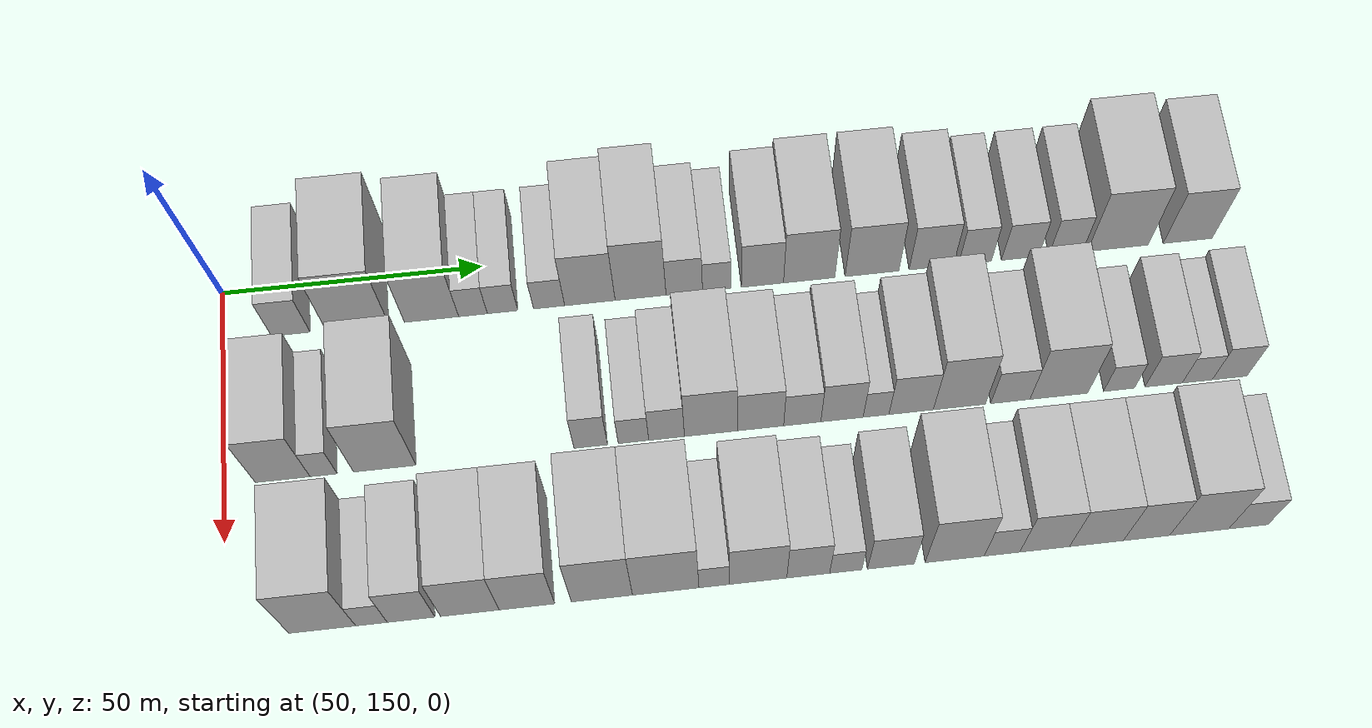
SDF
<sdf version="1.6">
 <world name="default">
  <model name="building_57">
   <static>1</static>
   <pose>50.0000 162.9138 0 0.000000 0.000000 0.000000</pose>
   <link name="link">
    <pose>0 0 7.50 0 0 0</pose>
    <collision name="collision"><geometry><box><size>20.0000 7.3179 15.0000</size></box></geometry></collision>
    <visual name="visual">
     <cast_shadows>0</cast_shadows>
     <geometry><box><size>20.0000 7.3179 15.0000</size></box></geometry>
     <material>
      <script>
       <uri>model://HANNAS_wall/materials/scripts</uri>
       <uri>model://HANNAS_wall/materials/textures</uri>
       <name>vrc/HANNAS_wall</name>
      </script>
     </material>
    </visual>
   </link>
  </model>
  <model name="building_58">
   <static>1</static>
   <pose>50.0000 175.5342 0 0.000000 0.000000 0.000000</pose>
   <link name="link">
    <pose>0 0 12.00 0 0 0</pose>
    <collision name="collision"><geometry><box><size>20.0000 11.9230 24.0000</size></box></geometry></collision>
    <visual name="visual">
     <cast_shadows>0</cast_shadows>
     <geometry><box><size>20.0000 11.9230 24.0000</size></box></geometry>
     <material>
      <script>
       <uri>model://HANNAS_wall/materials/scripts</uri>
       <uri>model://HANNAS_wall/materials/textures</uri>
       <name>vrc/HANNAS_wall</name>
      </script>
     </material>
    </visual>
   </link>
  </model>
  <model name="building_59">
   <static>1</static>
   <pose>50.0000 189.6676 0 0.000000 0.000000 0.000000</pose>
   <link name="link">
    <pose>0 0 10.50 0 0 0</pose>
    <collision name="collision"><geometry><box><size>20.0000 10.3438 21.0000</size></box></geometry></collision>
    <visual name="visual">
     <cast_shadows>0</cast_shadows>
     <geometry><box><size>20.0000 10.3438 21.0000</size></box></geometry>
     <material>
      <script>
       <uri>model://HANNAS_wall/materials/scripts</uri>
       <uri>model://HANNAS_wall/materials/textures</uri>
       <name>vrc/HANNAS_wall</name>
      </script>
     </material>
    </visual>
   </link>
  </model>
  <model name="building_60">
   <static>1</static>
   <pose>50.0000 197.5834 0 0.000000 0.000000 0.000000</pose>
   <link name="link">
    <pose>0 0 6.00 0 0 0</pose>
    <collision name="collision"><geometry><box><size>20.0000 5.4879 12.0000</size></box></geometry></collision>
    <visual name="visual">
     <cast_shadows>0</cast_shadows>
     <geometry><box><size>20.0000 5.4879 12.0000</size></box></geometry>
     <material>
      <script>
       <uri>model://HANNAS_wall/materials/scripts</uri>
       <uri>model://HANNAS_wall/materials/textures</uri>
       <name>vrc/HANNAS_wall</name>
      </script>
     </material>
    </visual>
   </link>
  </model>
  <model name="building_61">
   <static>1</static>
   <pose>50.0000 203.2409 0 0.000000 0.000000 0.000000</pose>
   <link name="link">
    <pose>0 0 6.00 0 0 0</pose>
    <collision name="collision"><geometry><box><size>20.0000 5.8271 12.0000</size></box></geometry></collision>
    <visual name="visual">
     <cast_shadows>0</cast_shadows>
     <geometry><box><size>20.0000 5.8271 12.0000</size></box></geometry>
     <material>
      <script>
       <uri>model://HANNAS_wall/materials/scripts</uri>
       <uri>model://HANNAS_wall/materials/textures</uri>
       <name>vrc/HANNAS_wall</name>
      </script>
     </material>
    </visual>
   </link>
  </model>
  <model name="building_62">
   <static>1</static>
   <pose>50.0000 212.1475 0 0.000000 0.000000 0.000000</pose>
   <link name="link">
    <pose>0 0 6.00 0 0 0</pose>
    <collision name="collision"><geometry><box><size>20.0000 5.9862 12.0000</size></box></geometry></collision>
    <visual name="visual">
     <cast_shadows>0</cast_shadows>
     <geometry><box><size>20.0000 5.9862 12.0000</size></box></geometry>
     <material>
      <script>
       <uri>model://HANNAS_wall/materials/scripts</uri>
       <uri>model://HANNAS_wall/materials/textures</uri>
       <name>vrc/HANNAS_wall</name>
      </script>
     </material>
    </visual>
   </link>
  </model>
  <model name="building_63">
   <static>1</static>
   <pose>50.0000 219.9876 0 0.000000 0.000000 0.000000</pose>
   <link name="link">
    <pose>0 0 10.50 0 0 0</pose>
    <collision name="collision"><geometry><box><size>20.0000 9.6940 21.0000</size></box></geometry></collision>
    <visual name="visual">
     <cast_shadows>0</cast_shadows>
     <geometry><box><size>20.0000 9.6940 21.0000</size></box></geometry>
     <material>
      <script>
       <uri>model://HANNAS_wall/materials/scripts</uri>
       <uri>model://HANNAS_wall/materials/textures</uri>
       <name>vrc/HANNAS_wall</name>
      </script>
     </material>
    </visual>
   </link>
  </model>
  <model name="building_64">
   <static>1</static>
   <pose>50.0000 229.7337 0 0.000000 0.000000 0.000000</pose>
   <link name="link">
    <pose>0 0 12.00 0 0 0</pose>
    <collision name="collision"><geometry><box><size>20.0000 9.7983 24.0000</size></box></geometry></collision>
    <visual name="visual">
     <cast_shadows>0</cast_shadows>
     <geometry><box><size>20.0000 9.7983 24.0000</size></box></geometry>
     <material>
      <script>
       <uri>model://HANNAS_wall/materials/scripts</uri>
       <uri>model://HANNAS_wall/materials/textures</uri>
       <name>vrc/HANNAS_wall</name>
      </script>
     </material>
    </visual>
   </link>
  </model>
  <model name="building_65">
   <static>1</static>
   <pose>50.0000 238.1530 0 0.000000 0.000000 0.000000</pose>
   <link name="link">
    <pose>0 0 7.50 0 0 0</pose>
    <collision name="collision"><geometry><box><size>20.0000 7.0405 15.0000</size></box></geometry></collision>
    <visual name="visual">
     <cast_shadows>0</cast_shadows>
     <geometry><box><size>20.0000 7.0405 15.0000</size></box></geometry>
     <material>
      <script>
       <uri>model://HANNAS_wall/materials/scripts</uri>
       <uri>model://HANNAS_wall/materials/textures</uri>
       <name>vrc/HANNAS_wall</name>
      </script>
     </material>
    </visual>
   </link>
  </model>
  <model name="building_66">
   <static>1</static>
   <pose>50.0000 244.4264 0 0.000000 0.000000 0.000000</pose>
   <link name="link">
    <pose>0 0 6.00 0 0 0</pose>
    <collision name="collision"><geometry><box><size>20.0000 5.5063 12.0000</size></box></geometry></collision>
    <visual name="visual">
     <cast_shadows>0</cast_shadows>
     <geometry><box><size>20.0000 5.5063 12.0000</size></box></geometry>
     <material>
      <script>
       <uri>model://HANNAS_wall/materials/scripts</uri>
       <uri>model://HANNAS_wall/materials/textures</uri>
       <name>vrc/HANNAS_wall</name>
      </script>
     </material>
    </visual>
   </link>
  </model>
  <model name="building_67">
   <static>1</static>
   <pose>50.0000 253.2638 0 0.000000 0.000000 0.000000</pose>
   <link name="link">
    <pose>0 0 9.00 0 0 0</pose>
    <collision name="collision"><geometry><box><size>20.0000 8.1686 18.0000</size></box></geometry></collision>
    <visual name="visual">
     <cast_shadows>0</cast_shadows>
     <geometry><box><size>20.0000 8.1686 18.0000</size></box></geometry>
     <material>
      <script>
       <uri>model://HANNAS_wall/materials/scripts</uri>
       <uri>model://HANNAS_wall/materials/textures</uri>
       <name>vrc/HANNAS_wall</name>
      </script>
     </material>
    </visual>
   </link>
  </model>
  <model name="building_68">
   <static>1</static>
   <pose>50.0000 262.3257 0 0.000000 0.000000 0.000000</pose>
   <link name="link">
    <pose>0 0 10.50 0 0 0</pose>
    <collision name="collision"><geometry><box><size>20.0000 9.9552 21.0000</size></box></geometry></collision>
    <visual name="visual">
     <cast_shadows>0</cast_shadows>
     <geometry><box><size>20.0000 9.9552 21.0000</size></box></geometry>
     <material>
      <script>
       <uri>model://HANNAS_wall/materials/scripts</uri>
       <uri>model://HANNAS_wall/materials/textures</uri>
       <name>vrc/HANNAS_wall</name>
      </script>
     </material>
    </visual>
   </link>
  </model>
  <model name="building_69">
   <static>1</static>
   <pose>50.0000 274.5412 0 0.000000 0.000000 0.000000</pose>
   <link name="link">
    <pose>0 0 10.50 0 0 0</pose>
    <collision name="collision"><geometry><box><size>20.0000 10.4757 21.0000</size></box></geometry></collision>
    <visual name="visual">
     <cast_shadows>0</cast_shadows>
     <geometry><box><size>20.0000 10.4757 21.0000</size></box></geometry>
     <material>
      <script>
       <uri>model://HANNAS_wall/materials/scripts</uri>
       <uri>model://HANNAS_wall/materials/textures</uri>
       <name>vrc/HANNAS_wall</name>
      </script>
     </material>
    </visual>
   </link>
  </model>
  <model name="building_70">
   <static>1</static>
   <pose>50.0000 286.1016 0 0.000000 0.000000 0.000000</pose>
   <link name="link">
    <pose>0 0 9.00 0 0 0</pose>
    <collision name="collision"><geometry><box><size>20.0000 8.6452 18.0000</size></box></geometry></collision>
    <visual name="visual">
     <cast_shadows>0</cast_shadows>
     <geometry><box><size>20.0000 8.6452 18.0000</size></box></geometry>
     <material>
      <script>
       <uri>model://HANNAS_wall/materials/scripts</uri>
       <uri>model://HANNAS_wall/materials/textures</uri>
       <name>vrc/HANNAS_wall</name>
      </script>
     </material>
    </visual>
   </link>
  </model>
  <model name="building_71">
   <static>1</static>
   <pose>50.0000 294.6359 0 0.000000 0.000000 0.000000</pose>
   <link name="link">
    <pose>0 0 7.50 0 0 0</pose>
    <collision name="collision"><geometry><box><size>20.0000 6.4233 15.0000</size></box></geometry></collision>
    <visual name="visual">
     <cast_shadows>0</cast_shadows>
     <geometry><box><size>20.0000 6.4233 15.0000</size></box></geometry>
     <material>
      <script>
       <uri>model://HANNAS_wall/materials/scripts</uri>
       <uri>model://HANNAS_wall/materials/textures</uri>
       <name>vrc/HANNAS_wall</name>
      </script>
     </material>
    </visual>
   </link>
  </model>
  <model name="building_72">
   <static>1</static>
   <pose>50.0000 303.4759 0 0.000000 0.000000 0.000000</pose>
   <link name="link">
    <pose>0 0 7.50 0 0 0</pose>
    <collision name="collision"><geometry><box><size>20.0000 7.2566 15.0000</size></box></geometry></collision>
    <visual name="visual">
     <cast_shadows>0</cast_shadows>
     <geometry><box><size>20.0000 7.2566 15.0000</size></box></geometry>
     <material>
      <script>
       <uri>model://HANNAS_wall/materials/scripts</uri>
       <uri>model://HANNAS_wall/materials/textures</uri>
       <name>vrc/HANNAS_wall</name>
      </script>
     </material>
    </visual>
   </link>
  </model>
  <model name="building_73">
   <static>1</static>
   <pose>50.0000 312.4105 0 0.000000 0.000000 0.000000</pose>
   <link name="link">
    <pose>0 0 7.50 0 0 0</pose>
    <collision name="collision"><geometry><box><size>20.0000 6.6127 15.0000</size></box></geometry></collision>
    <visual name="visual">
     <cast_shadows>0</cast_shadows>
     <geometry><box><size>20.0000 6.6127 15.0000</size></box></geometry>
     <material>
      <script>
       <uri>model://HANNAS_wall/materials/scripts</uri>
       <uri>model://HANNAS_wall/materials/textures</uri>
       <name>vrc/HANNAS_wall</name>
      </script>
     </material>
    </visual>
   </link>
  </model>
  <model name="building_74">
   <static>1</static>
   <pose>50.0000 322.6926 0 0.000000 0.000000 0.000000</pose>
   <link name="link">
    <pose>0 0 12.00 0 0 0</pose>
    <collision name="collision"><geometry><box><size>20.0000 11.9515 24.0000</size></box></geometry></collision>
    <visual name="visual">
     <cast_shadows>0</cast_shadows>
     <geometry><box><size>20.0000 11.9515 24.0000</size></box></geometry>
     <material>
      <script>
       <uri>model://HANNAS_wall/materials/scripts</uri>
       <uri>model://HANNAS_wall/materials/textures</uri>
       <name>vrc/HANNAS_wall</name>
      </script>
     </material>
    </visual>
   </link>
  </model>
  <model name="building_75">
   <static>1</static>
   <pose>50.0000 336.5214 0 0.000000 0.000000 0.000000</pose>
   <link name="link">
    <pose>0 0 10.50 0 0 0</pose>
    <collision name="collision"><geometry><box><size>20.0000 9.7062 21.0000</size></box></geometry></collision>
    <visual name="visual">
     <cast_shadows>0</cast_shadows>
     <geometry><box><size>20.0000 9.7062 21.0000</size></box></geometry>
     <material>
      <script>
       <uri>model://HANNAS_wall/materials/scripts</uri>
       <uri>model://HANNAS_wall/materials/textures</uri>
       <name>vrc/HANNAS_wall</name>
      </script>
     </material>
    </visual>
   </link>
  </model>
  <model name="building_131">
   <static>1</static>
   <pose>79.0000 160.7873 0 0.000000 0.000000 0.000000</pose>
   <link name="link">
    <pose>0 0 10.50 0 0 0</pose>
    <collision name="collision"><geometry><box><size>20.0000 10.0291 21.0000</size></box></geometry></collision>
    <visual name="visual">
     <cast_shadows>0</cast_shadows>
     <geometry><box><size>20.0000 10.0291 21.0000</size></box></geometry>
     <material>
      <script>
       <uri>model://HANNAS_wall/materials/scripts</uri>
       <uri>model://HANNAS_wall/materials/textures</uri>
       <name>vrc/HANNAS_wall</name>
      </script>
     </material>
    </visual>
   </link>
  </model>
  <model name="building_132">
   <static>1</static>
   <pose>79.0000 168.2964 0 0.000000 0.000000 0.000000</pose>
   <link name="link">
    <pose>0 0 6.00 0 0 0</pose>
    <collision name="collision"><geometry><box><size>20.0000 4.9891 12.0000</size></box></geometry></collision>
    <visual name="visual">
     <cast_shadows>0</cast_shadows>
     <geometry><box><size>20.0000 4.9891 12.0000</size></box></geometry>
     <material>
      <script>
       <uri>model://HANNAS_wall/materials/scripts</uri>
       <uri>model://HANNAS_wall/materials/textures</uri>
       <name>vrc/HANNAS_wall</name>
      </script>
     </material>
    </visual>
   </link>
  </model>
  <model name="building_133">
   <static>1</static>
   <pose>79.0000 179.5604 0 0.000000 0.000000 0.000000</pose>
   <link name="link">
    <pose>0 0 12.00 0 0 0</pose>
    <collision name="collision"><geometry><box><size>20.0000 11.5391 24.0000</size></box></geometry></collision>
    <visual name="visual">
     <cast_shadows>0</cast_shadows>
     <geometry><box><size>20.0000 11.5391 24.0000</size></box></geometry>
     <material>
      <script>
       <uri>model://HANNAS_wall/materials/scripts</uri>
       <uri>model://HANNAS_wall/materials/textures</uri>
       <name>vrc/HANNAS_wall</name>
      </script>
     </material>
    </visual>
   </link>
  </model>
  <model name="building_134">
   <static>1</static>
   <pose>79.0000 217.6968 0 0.000000 0.000000 0.000000</pose>
   <link name="link">
    <pose>0 0 7.50 0 0 0</pose>
    <collision name="collision"><geometry><box><size>20.0000 6.2445 15.0000</size></box></geometry></collision>
    <visual name="visual">
     <cast_shadows>0</cast_shadows>
     <geometry><box><size>20.0000 6.2445 15.0000</size></box></geometry>
     <material>
      <script>
       <uri>model://HANNAS_wall/materials/scripts</uri>
       <uri>model://HANNAS_wall/materials/textures</uri>
       <name>vrc/HANNAS_wall</name>
      </script>
     </material>
    </visual>
   </link>
  </model>
  <model name="building_135">
   <static>1</static>
   <pose>79.0000 225.6678 0 0.000000 0.000000 0.000000</pose>
   <link name="link">
    <pose>0 0 6.00 0 0 0</pose>
    <collision name="collision"><geometry><box><size>20.0000 5.6975 12.0000</size></box></geometry></collision>
    <visual name="visual">
     <cast_shadows>0</cast_shadows>
     <geometry><box><size>20.0000 5.6975 12.0000</size></box></geometry>
     <material>
      <script>
       <uri>model://HANNAS_wall/materials/scripts</uri>
       <uri>model://HANNAS_wall/materials/textures</uri>
       <name>vrc/HANNAS_wall</name>
      </script>
     </material>
    </visual>
   </link>
  </model>
  <model name="building_136">
   <static>1</static>
   <pose>79.0000 231.8437 0 0.000000 0.000000 0.000000</pose>
   <link name="link">
    <pose>0 0 7.50 0 0 0</pose>
    <collision name="collision"><geometry><box><size>20.0000 6.6543 15.0000</size></box></geometry></collision>
    <visual name="visual">
     <cast_shadows>0</cast_shadows>
     <geometry><box><size>20.0000 6.6543 15.0000</size></box></geometry>
     <material>
      <script>
       <uri>model://HANNAS_wall/materials/scripts</uri>
       <uri>model://HANNAS_wall/materials/textures</uri>
       <name>vrc/HANNAS_wall</name>
      </script>
     </material>
    </visual>
   </link>
  </model>
  <model name="building_137">
   <static>1</static>
   <pose>79.0000 240.1162 0 0.000000 0.000000 0.000000</pose>
   <link name="link">
    <pose>0 0 10.50 0 0 0</pose>
    <collision name="collision"><geometry><box><size>20.0000 9.8907 21.0000</size></box></geometry></collision>
    <visual name="visual">
     <cast_shadows>0</cast_shadows>
     <geometry><box><size>20.0000 9.8907 21.0000</size></box></geometry>
     <material>
      <script>
       <uri>model://HANNAS_wall/materials/scripts</uri>
       <uri>model://HANNAS_wall/materials/textures</uri>
       <name>vrc/HANNAS_wall</name>
      </script>
     </material>
    </visual>
   </link>
  </model>
  <model name="building_138">
   <static>1</static>
   <pose>79.0000 249.4116 0 0.000000 0.000000 0.000000</pose>
   <link name="link">
    <pose>0 0 9.00 0 0 0</pose>
    <collision name="collision"><geometry><box><size>20.0000 8.7002 18.0000</size></box></geometry></collision>
    <visual name="visual">
     <cast_shadows>0</cast_shadows>
     <geometry><box><size>20.0000 8.7002 18.0000</size></box></geometry>
     <material>
      <script>
       <uri>model://HANNAS_wall/materials/scripts</uri>
       <uri>model://HANNAS_wall/materials/textures</uri>
       <name>vrc/HANNAS_wall</name>
      </script>
     </material>
    </visual>
   </link>
  </model>
  <model name="building_139">
   <static>1</static>
   <pose>79.0000 257.2478 0 0.000000 0.000000 0.000000</pose>
   <link name="link">
    <pose>0 0 7.50 0 0 0</pose>
    <collision name="collision"><geometry><box><size>20.0000 6.9723 15.0000</size></box></geometry></collision>
    <visual name="visual">
     <cast_shadows>0</cast_shadows>
     <geometry><box><size>20.0000 6.9723 15.0000</size></box></geometry>
     <material>
      <script>
       <uri>model://HANNAS_wall/materials/scripts</uri>
       <uri>model://HANNAS_wall/materials/textures</uri>
       <name>vrc/HANNAS_wall</name>
      </script>
     </material>
    </visual>
   </link>
  </model>
  <model name="building_140">
   <static>1</static>
   <pose>79.0000 264.7198 0 0.000000 0.000000 0.000000</pose>
   <link name="link">
    <pose>0 0 9.00 0 0 0</pose>
    <collision name="collision"><geometry><box><size>20.0000 7.9718 18.0000</size></box></geometry></collision>
    <visual name="visual">
     <cast_shadows>0</cast_shadows>
     <geometry><box><size>20.0000 7.9718 18.0000</size></box></geometry>
     <material>
      <script>
       <uri>model://HANNAS_wall/materials/scripts</uri>
       <uri>model://HANNAS_wall/materials/textures</uri>
       <name>vrc/HANNAS_wall</name>
      </script>
     </material>
    </visual>
   </link>
  </model>
  <model name="building_141">
   <static>1</static>
   <pose>79.0000 271.1408 0 0.000000 0.000000 0.000000</pose>
   <link name="link">
    <pose>0 0 6.00 0 0 0</pose>
    <collision name="collision"><geometry><box><size>20.0000 4.8702 12.0000</size></box></geometry></collision>
    <visual name="visual">
     <cast_shadows>0</cast_shadows>
     <geometry><box><size>20.0000 4.8702 12.0000</size></box></geometry>
     <material>
      <script>
       <uri>model://HANNAS_wall/materials/scripts</uri>
       <uri>model://HANNAS_wall/materials/textures</uri>
       <name>vrc/HANNAS_wall</name>
      </script>
     </material>
    </visual>
   </link>
  </model>
  <model name="building_142">
   <static>1</static>
   <pose>79.0000 277.7750 0 0.000000 0.000000 0.000000</pose>
   <link name="link">
    <pose>0 0 9.00 0 0 0</pose>
    <collision name="collision"><geometry><box><size>20.0000 8.3982 18.0000</size></box></geometry></collision>
    <visual name="visual">
     <cast_shadows>0</cast_shadows>
     <geometry><box><size>20.0000 8.3982 18.0000</size></box></geometry>
     <material>
      <script>
       <uri>model://HANNAS_wall/materials/scripts</uri>
       <uri>model://HANNAS_wall/materials/textures</uri>
       <name>vrc/HANNAS_wall</name>
      </script>
     </material>
    </visual>
   </link>
  </model>
  <model name="building_143">
   <static>1</static>
   <pose>79.0000 286.9062 0 0.000000 0.000000 0.000000</pose>
   <link name="link">
    <pose>0 0 12.00 0 0 0</pose>
    <collision name="collision"><geometry><box><size>20.0000 9.8642 24.0000</size></box></geometry></collision>
    <visual name="visual">
     <cast_shadows>0</cast_shadows>
     <geometry><box><size>20.0000 9.8642 24.0000</size></box></geometry>
     <material>
      <script>
       <uri>model://HANNAS_wall/materials/scripts</uri>
       <uri>model://HANNAS_wall/materials/textures</uri>
       <name>vrc/HANNAS_wall</name>
      </script>
     </material>
    </visual>
   </link>
  </model>
  <model name="building_144">
   <static>1</static>
   <pose>79.0000 296.5648 0 0.000000 0.000000 0.000000</pose>
   <link name="link">
    <pose>0 0 7.50 0 0 0</pose>
    <collision name="collision"><geometry><box><size>20.0000 7.4529 15.0000</size></box></geometry></collision>
    <visual name="visual">
     <cast_shadows>0</cast_shadows>
     <geometry><box><size>20.0000 7.4529 15.0000</size></box></geometry>
     <material>
      <script>
       <uri>model://HANNAS_wall/materials/scripts</uri>
       <uri>model://HANNAS_wall/materials/textures</uri>
       <name>vrc/HANNAS_wall</name>
      </script>
     </material>
    </visual>
   </link>
  </model>
  <model name="building_145">
   <static>1</static>
   <pose>79.0000 305.8004 0 0.000000 0.000000 0.000000</pose>
   <link name="link">
    <pose>0 0 12.00 0 0 0</pose>
    <collision name="collision"><geometry><box><size>20.0000 11.0182 24.0000</size></box></geometry></collision>
    <visual name="visual">
     <cast_shadows>0</cast_shadows>
     <geometry><box><size>20.0000 11.0182 24.0000</size></box></geometry>
     <material>
      <script>
       <uri>model://HANNAS_wall/materials/scripts</uri>
       <uri>model://HANNAS_wall/materials/textures</uri>
       <name>vrc/HANNAS_wall</name>
      </script>
     </material>
    </visual>
   </link>
  </model>
  <model name="building_146">
   <static>1</static>
   <pose>79.0000 317.2620 0 0.000000 0.000000 0.000000</pose>
   <link name="link">
    <pose>0 0 6.00 0 0 0</pose>
    <collision name="collision"><geometry><box><size>20.0000 5.9052 12.0000</size></box></geometry></collision>
    <visual name="visual">
     <cast_shadows>0</cast_shadows>
     <geometry><box><size>20.0000 5.9052 12.0000</size></box></geometry>
     <material>
      <script>
       <uri>model://HANNAS_wall/materials/scripts</uri>
       <uri>model://HANNAS_wall/materials/textures</uri>
       <name>vrc/HANNAS_wall</name>
      </script>
     </material>
    </visual>
   </link>
  </model>
  <model name="building_147">
   <static>1</static>
   <pose>79.0000 325.7873 0 0.000000 0.000000 0.000000</pose>
   <link name="link">
    <pose>0 0 7.50 0 0 0</pose>
    <collision name="collision"><geometry><box><size>20.0000 7.1453 15.0000</size></box></geometry></collision>
    <visual name="visual">
     <cast_shadows>0</cast_shadows>
     <geometry><box><size>20.0000 7.1453 15.0000</size></box></geometry>
     <material>
      <script>
       <uri>model://HANNAS_wall/materials/scripts</uri>
       <uri>model://HANNAS_wall/materials/textures</uri>
       <name>vrc/HANNAS_wall</name>
      </script>
     </material>
    </visual>
   </link>
  </model>
  <model name="building_148">
   <static>1</static>
   <pose>79.0000 332.2399 0 0.000000 0.000000 0.000000</pose>
   <link name="link">
    <pose>0 0 6.00 0 0 0</pose>
    <collision name="collision"><geometry><box><size>20.0000 5.7599 12.0000</size></box></geometry></collision>
    <visual name="visual">
     <cast_shadows>0</cast_shadows>
     <geometry><box><size>20.0000 5.7599 12.0000</size></box></geometry>
     <material>
      <script>
       <uri>model://HANNAS_wall/materials/scripts</uri>
       <uri>model://HANNAS_wall/materials/textures</uri>
       <name>vrc/HANNAS_wall</name>
      </script>
     </material>
    </visual>
   </link>
  </model>
  <model name="building_149">
   <static>1</static>
   <pose>79.0000 338.4468 0 0.000000 0.000000 0.000000</pose>
   <link name="link">
    <pose>0 0 7.50 0 0 0</pose>
    <collision name="collision"><geometry><box><size>20.0000 6.6540 15.0000</size></box></geometry></collision>
    <visual name="visual">
     <cast_shadows>0</cast_shadows>
     <geometry><box><size>20.0000 6.6540 15.0000</size></box></geometry>
     <material>
      <script>
       <uri>model://HANNAS_wall/materials/scripts</uri>
       <uri>model://HANNAS_wall/materials/textures</uri>
       <name>vrc/HANNAS_wall</name>
      </script>
     </material>
    </visual>
   </link>
  </model>
  <model name="building_209">
   <static>1</static>
   <pose>108.0000 167.2366 0 0.000000 0.000000 0.000000</pose>
   <link name="link">
    <pose>0 0 12.00 0 0 0</pose>
    <collision name="collision"><geometry><box><size>20.0000 11.8540 24.0000</size></box></geometry></collision>
    <visual name="visual">
     <cast_shadows>0</cast_shadows>
     <geometry><box><size>20.0000 11.8540 24.0000</size></box></geometry>
     <material>
      <script>
       <uri>model://HANNAS_wall/materials/scripts</uri>
       <uri>model://HANNAS_wall/materials/textures</uri>
       <name>vrc/HANNAS_wall</name>
      </script>
     </material>
    </visual>
   </link>
  </model>
  <model name="building_210">
   <static>1</static>
   <pose>108.0000 175.9806 0 0.000000 0.000000 0.000000</pose>
   <link name="link">
    <pose>0 0 6.00 0 0 0</pose>
    <collision name="collision"><geometry><box><size>20.0000 5.6340 12.0000</size></box></geometry></collision>
    <visual name="visual">
     <cast_shadows>0</cast_shadows>
     <geometry><box><size>20.0000 5.6340 12.0000</size></box></geometry>
     <material>
      <script>
       <uri>model://HANNAS_wall/materials/scripts</uri>
       <uri>model://HANNAS_wall/materials/textures</uri>
       <name>vrc/HANNAS_wall</name>
      </script>
     </material>
    </visual>
   </link>
  </model>
  <model name="building_211">
   <static>1</static>
   <pose>108.0000 183.0486 0 0.000000 0.000000 0.000000</pose>
   <link name="link">
    <pose>0 0 9.00 0 0 0</pose>
    <collision name="collision"><geometry><box><size>20.0000 8.5020 18.0000</size></box></geometry></collision>
    <visual name="visual">
     <cast_shadows>0</cast_shadows>
     <geometry><box><size>20.0000 8.5020 18.0000</size></box></geometry>
     <material>
      <script>
       <uri>model://HANNAS_wall/materials/scripts</uri>
       <uri>model://HANNAS_wall/materials/textures</uri>
       <name>vrc/HANNAS_wall</name>
      </script>
     </material>
    </visual>
   </link>
  </model>
  <model name="building_212">
   <static>1</static>
   <pose>108.0000 193.5371 0 0.000000 0.000000 0.000000</pose>
   <link name="link">
    <pose>0 0 10.50 0 0 0</pose>
    <collision name="collision"><geometry><box><size>20.0000 10.4749 21.0000</size></box></geometry></collision>
    <visual name="visual">
     <cast_shadows>0</cast_shadows>
     <geometry><box><size>20.0000 10.4749 21.0000</size></box></geometry>
     <material>
      <script>
       <uri>model://HANNAS_wall/materials/scripts</uri>
       <uri>model://HANNAS_wall/materials/textures</uri>
       <name>vrc/HANNAS_wall</name>
      </script>
     </material>
    </visual>
   </link>
  </model>
  <model name="building_213">
   <static>1</static>
   <pose>108.0000 203.7738 0 0.000000 0.000000 0.000000</pose>
   <link name="link">
    <pose>0 0 10.50 0 0 0</pose>
    <collision name="collision"><geometry><box><size>20.0000 9.9985 21.0000</size></box></geometry></collision>
    <visual name="visual">
     <cast_shadows>0</cast_shadows>
     <geometry><box><size>20.0000 9.9985 21.0000</size></box></geometry>
     <material>
      <script>
       <uri>model://HANNAS_wall/materials/scripts</uri>
       <uri>model://HANNAS_wall/materials/textures</uri>
       <name>vrc/HANNAS_wall</name>
      </script>
     </material>
    </visual>
   </link>
  </model>
  <model name="building_214">
   <static>1</static>
   <pose>108.0000 217.2816 0 0.000000 0.000000 0.000000</pose>
   <link name="link">
    <pose>0 0 12.00 0 0 0</pose>
    <collision name="collision"><geometry><box><size>20.0000 11.0171 24.0000</size></box></geometry></collision>
    <visual name="visual">
     <cast_shadows>0</cast_shadows>
     <geometry><box><size>20.0000 11.0171 24.0000</size></box></geometry>
     <material>
      <script>
       <uri>model://HANNAS_wall/materials/scripts</uri>
       <uri>model://HANNAS_wall/materials/textures</uri>
       <name>vrc/HANNAS_wall</name>
      </script>
     </material>
    </visual>
   </link>
  </model>
  <model name="building_215">
   <static>1</static>
   <pose>108.0000 228.7811 0 0.000000 0.000000 0.000000</pose>
   <link name="link">
    <pose>0 0 12.00 0 0 0</pose>
    <collision name="collision"><geometry><box><size>20.0000 11.9819 24.0000</size></box></geometry></collision>
    <visual name="visual">
     <cast_shadows>0</cast_shadows>
     <geometry><box><size>20.0000 11.9819 24.0000</size></box></geometry>
     <material>
      <script>
       <uri>model://HANNAS_wall/materials/scripts</uri>
       <uri>model://HANNAS_wall/materials/textures</uri>
       <name>vrc/HANNAS_wall</name>
      </script>
     </material>
    </visual>
   </link>
  </model>
  <model name="building_216">
   <static>1</static>
   <pose>108.0000 237.5483 0 0.000000 0.000000 0.000000</pose>
   <link name="link">
    <pose>0 0 6.00 0 0 0</pose>
    <collision name="collision"><geometry><box><size>20.0000 5.5526 12.0000</size></box></geometry></collision>
    <visual name="visual">
     <cast_shadows>0</cast_shadows>
     <geometry><box><size>20.0000 5.5526 12.0000</size></box></geometry>
     <material>
      <script>
       <uri>model://HANNAS_wall/materials/scripts</uri>
       <uri>model://HANNAS_wall/materials/textures</uri>
       <name>vrc/HANNAS_wall</name>
      </script>
     </material>
    </visual>
   </link>
  </model>
  <model name="building_217">
   <static>1</static>
   <pose>108.0000 245.5159 0 0.000000 0.000000 0.000000</pose>
   <link name="link">
    <pose>0 0 10.50 0 0 0</pose>
    <collision name="collision"><geometry><box><size>20.0000 10.3825 21.0000</size></box></geometry></collision>
    <visual name="visual">
     <cast_shadows>0</cast_shadows>
     <geometry><box><size>20.0000 10.3825 21.0000</size></box></geometry>
     <material>
      <script>
       <uri>model://HANNAS_wall/materials/scripts</uri>
       <uri>model://HANNAS_wall/materials/textures</uri>
       <name>vrc/HANNAS_wall</name>
      </script>
     </material>
    </visual>
   </link>
  </model>
  <model name="building_218">
   <static>1</static>
   <pose>108.0000 254.6037 0 0.000000 0.000000 0.000000</pose>
   <link name="link">
    <pose>0 0 9.00 0 0 0</pose>
    <collision name="collision"><geometry><box><size>20.0000 7.7933 18.0000</size></box></geometry></collision>
    <visual name="visual">
     <cast_shadows>0</cast_shadows>
     <geometry><box><size>20.0000 7.7933 18.0000</size></box></geometry>
     <material>
      <script>
       <uri>model://HANNAS_wall/materials/scripts</uri>
       <uri>model://HANNAS_wall/materials/textures</uri>
       <name>vrc/HANNAS_wall</name>
      </script>
     </material>
    </visual>
   </link>
  </model>
  <model name="building_219">
   <static>1</static>
   <pose>108.0000 261.4410 0 0.000000 0.000000 0.000000</pose>
   <link name="link">
    <pose>0 0 6.00 0 0 0</pose>
    <collision name="collision"><geometry><box><size>20.0000 5.8813 12.0000</size></box></geometry></collision>
    <visual name="visual">
     <cast_shadows>0</cast_shadows>
     <geometry><box><size>20.0000 5.8813 12.0000</size></box></geometry>
     <material>
      <script>
       <uri>model://HANNAS_wall/materials/scripts</uri>
       <uri>model://HANNAS_wall/materials/textures</uri>
       <name>vrc/HANNAS_wall</name>
      </script>
     </material>
    </visual>
   </link>
  </model>
  <model name="building_220">
   <static>1</static>
   <pose>108.0000 269.6496 0 0.000000 0.000000 0.000000</pose>
   <link name="link">
    <pose>0 0 9.00 0 0 0</pose>
    <collision name="collision"><geometry><box><size>20.0000 8.5358 18.0000</size></box></geometry></collision>
    <visual name="visual">
     <cast_shadows>0</cast_shadows>
     <geometry><box><size>20.0000 8.5358 18.0000</size></box></geometry>
     <material>
      <script>
       <uri>model://HANNAS_wall/materials/scripts</uri>
       <uri>model://HANNAS_wall/materials/textures</uri>
       <name>vrc/HANNAS_wall</name>
      </script>
     </material>
    </visual>
   </link>
  </model>
  <model name="building_221">
   <static>1</static>
   <pose>108.0000 281.3497 0 0.000000 0.000000 0.000000</pose>
   <link name="link">
    <pose>0 0 12.00 0 0 0</pose>
    <collision name="collision"><geometry><box><size>20.0000 10.8644 24.0000</size></box></geometry></collision>
    <visual name="visual">
     <cast_shadows>0</cast_shadows>
     <geometry><box><size>20.0000 10.8644 24.0000</size></box></geometry>
     <material>
      <script>
       <uri>model://HANNAS_wall/materials/scripts</uri>
       <uri>model://HANNAS_wall/materials/textures</uri>
       <name>vrc/HANNAS_wall</name>
      </script>
     </material>
    </visual>
   </link>
  </model>
  <model name="building_222">
   <static>1</static>
   <pose>108.0000 290.0329 0 0.000000 0.000000 0.000000</pose>
   <link name="link">
    <pose>0 0 7.50 0 0 0</pose>
    <collision name="collision"><geometry><box><size>20.0000 6.5020 15.0000</size></box></geometry></collision>
    <visual name="visual">
     <cast_shadows>0</cast_shadows>
     <geometry><box><size>20.0000 6.5020 15.0000</size></box></geometry>
     <material>
      <script>
       <uri>model://HANNAS_wall/materials/scripts</uri>
       <uri>model://HANNAS_wall/materials/textures</uri>
       <name>vrc/HANNAS_wall</name>
      </script>
     </material>
    </visual>
   </link>
  </model>
  <model name="building_223">
   <static>1</static>
   <pose>108.0000 297.8698 0 0.000000 0.000000 0.000000</pose>
   <link name="link">
    <pose>0 0 10.50 0 0 0</pose>
    <collision name="collision"><geometry><box><size>20.0000 9.1719 21.0000</size></box></geometry></collision>
    <visual name="visual">
     <cast_shadows>0</cast_shadows>
     <geometry><box><size>20.0000 9.1719 21.0000</size></box></geometry>
     <material>
      <script>
       <uri>model://HANNAS_wall/materials/scripts</uri>
       <uri>model://HANNAS_wall/materials/textures</uri>
       <name>vrc/HANNAS_wall</name>
      </script>
     </material>
    </visual>
   </link>
  </model>
  <model name="building_224">
   <static>1</static>
   <pose>108.0000 307.4211 0 0.000000 0.000000 0.000000</pose>
   <link name="link">
    <pose>0 0 10.50 0 0 0</pose>
    <collision name="collision"><geometry><box><size>20.0000 9.9307 21.0000</size></box></geometry></collision>
    <visual name="visual">
     <cast_shadows>0</cast_shadows>
     <geometry><box><size>20.0000 9.9307 21.0000</size></box></geometry>
     <material>
      <script>
       <uri>model://HANNAS_wall/materials/scripts</uri>
       <uri>model://HANNAS_wall/materials/textures</uri>
       <name>vrc/HANNAS_wall</name>
      </script>
     </material>
    </visual>
   </link>
  </model>
  <model name="building_225">
   <static>1</static>
   <pose>108.0000 316.6714 0 0.000000 0.000000 0.000000</pose>
   <link name="link">
    <pose>0 0 10.50 0 0 0</pose>
    <collision name="collision"><geometry><box><size>20.0000 8.5699 21.0000</size></box></geometry></collision>
    <visual name="visual">
     <cast_shadows>0</cast_shadows>
     <geometry><box><size>20.0000 8.5699 21.0000</size></box></geometry>
     <material>
      <script>
       <uri>model://HANNAS_wall/materials/scripts</uri>
       <uri>model://HANNAS_wall/materials/textures</uri>
       <name>vrc/HANNAS_wall</name>
      </script>
     </material>
    </visual>
   </link>
  </model>
  <model name="building_226">
   <static>1</static>
   <pose>108.0000 326.4321 0 0.000000 0.000000 0.000000</pose>
   <link name="link">
    <pose>0 0 12.00 0 0 0</pose>
    <collision name="collision"><geometry><box><size>20.0000 10.9515 24.0000</size></box></geometry></collision>
    <visual name="visual">
     <cast_shadows>0</cast_shadows>
     <geometry><box><size>20.0000 10.9515 24.0000</size></box></geometry>
     <material>
      <script>
       <uri>model://HANNAS_wall/materials/scripts</uri>
       <uri>model://HANNAS_wall/materials/textures</uri>
       <name>vrc/HANNAS_wall</name>
      </script>
     </material>
    </visual>
   </link>
  </model>
  <model name="building_227">
   <static>1</static>
   <pose>108.0000 335.5683 0 0.000000 0.000000 0.000000</pose>
   <link name="link">
    <pose>0 0 7.50 0 0 0</pose>
    <collision name="collision"><geometry><box><size>20.0000 7.3209 15.0000</size></box></geometry></collision>
    <visual name="visual">
     <cast_shadows>0</cast_shadows>
     <geometry><box><size>20.0000 7.3209 15.0000</size></box></geometry>
     <material>
      <script>
       <uri>model://HANNAS_wall/materials/scripts</uri>
       <uri>model://HANNAS_wall/materials/textures</uri>
       <name>vrc/HANNAS_wall</name>
      </script>
     </material>
    </visual>
   </link>
  </model>
 </world>
</sdf>
